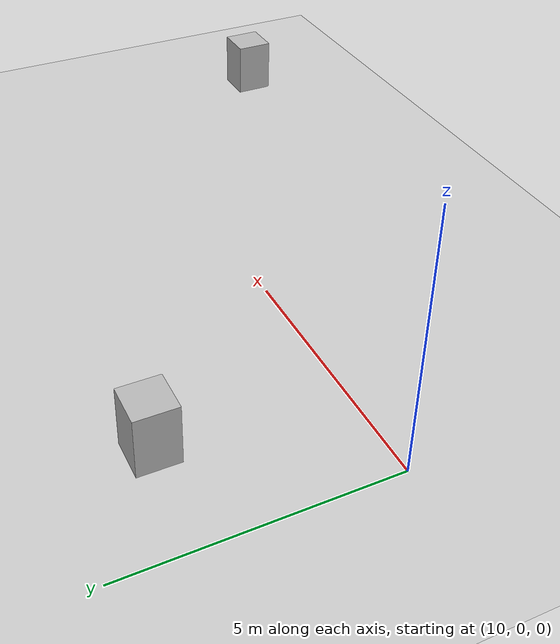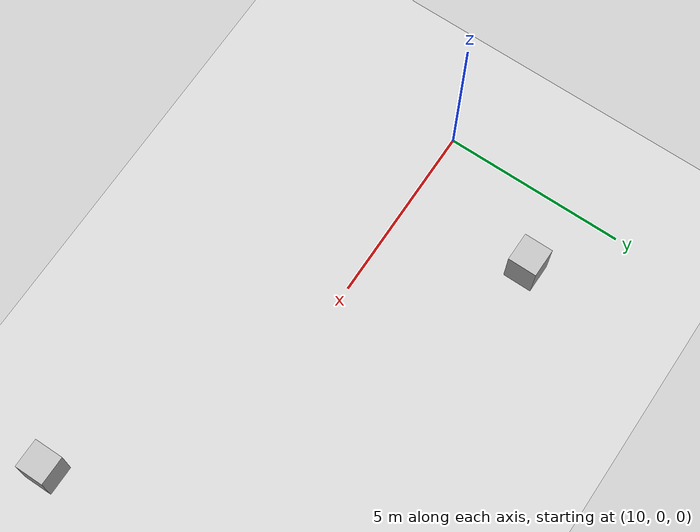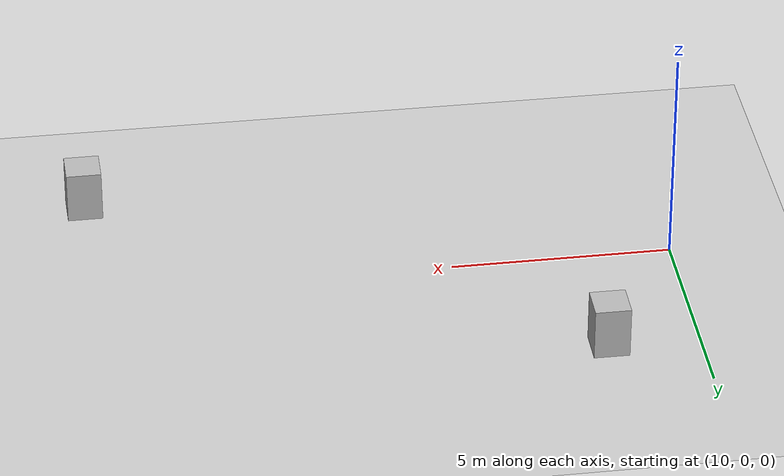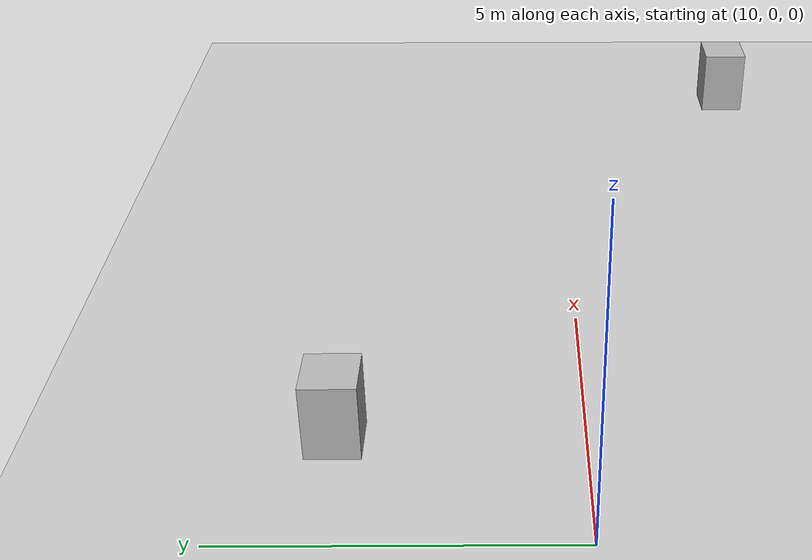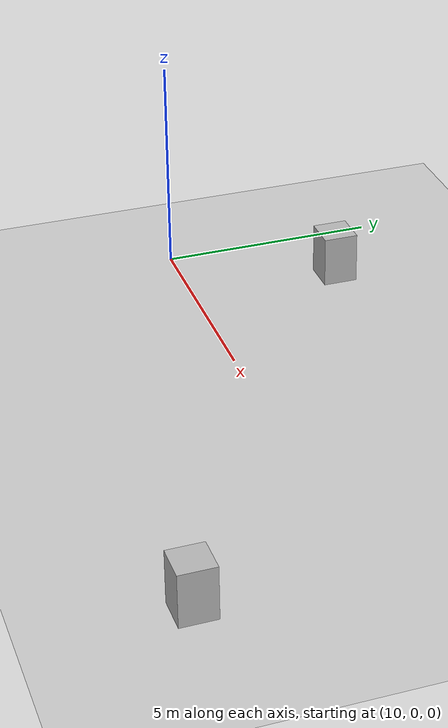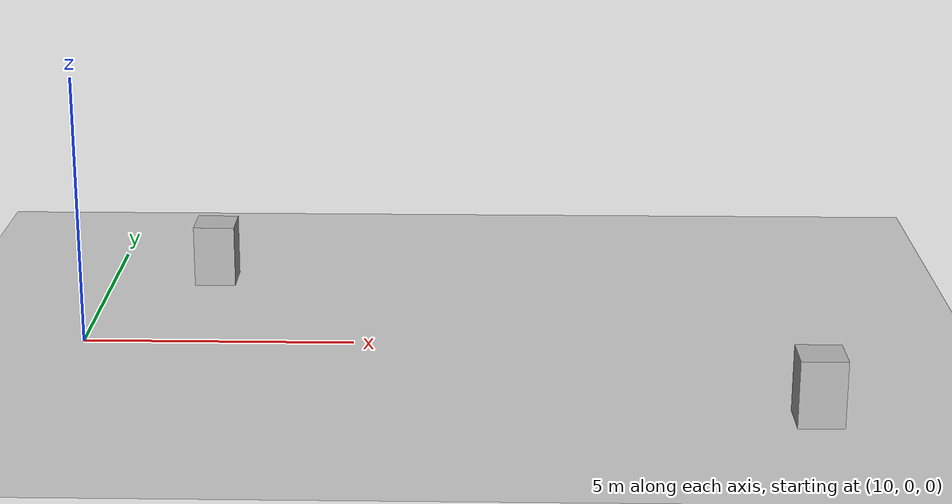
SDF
<?xml version="1.0"?>
<sdf version="1.6">
  <world name="v2-04g-cruise-s4902">
    <gravity>0 0 -9.81</gravity>
    <physics name="v2_deterministic" type="ode">
      <max_step_size>0.002</max_step_size>
      <real_time_update_rate>500</real_time_update_rate>
    </physics>
    <include>
      <uri>model://sun</uri>
    </include>
    <include>
      <uri>model://ground_plane</uri>
    </include>
    <model name="cruise-left">
      <static>true</static>
      <pose>12.046637487 3.503309289 0.600000000 0 0 -0.002295065</pose>
      <link name="link">
        <collision name="collision">
          <geometry>
            <box>
              <size>0.800000 0.800000 1.200000</size>
            </box>
          </geometry>
        </collision>
        <visual name="visual">
          <geometry>
            <box>
              <size>0.800000 0.800000 1.200000</size>
            </box>
          </geometry>
        </visual>
      </link>
    </model>
    <model name="cruise-right">
      <static>true</static>
      <pose>23.058249175 -3.446898310 0.600000000 0 0 0.003055757</pose>
      <link name="link">
        <collision name="collision">
          <geometry>
            <box>
              <size>0.800000 0.800000 1.200000</size>
            </box>
          </geometry>
        </collision>
        <visual name="visual">
          <geometry>
            <box>
              <size>0.800000 0.800000 1.200000</size>
            </box>
          </geometry>
        </visual>
      </link>
    </model>
  </world>
</sdf>
